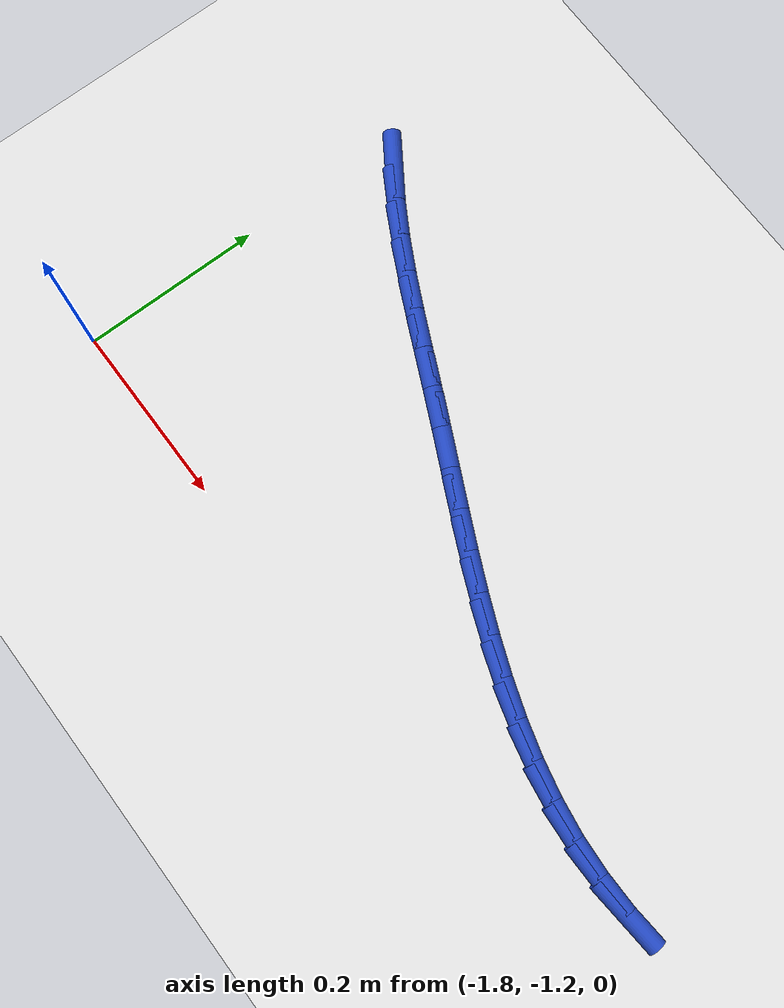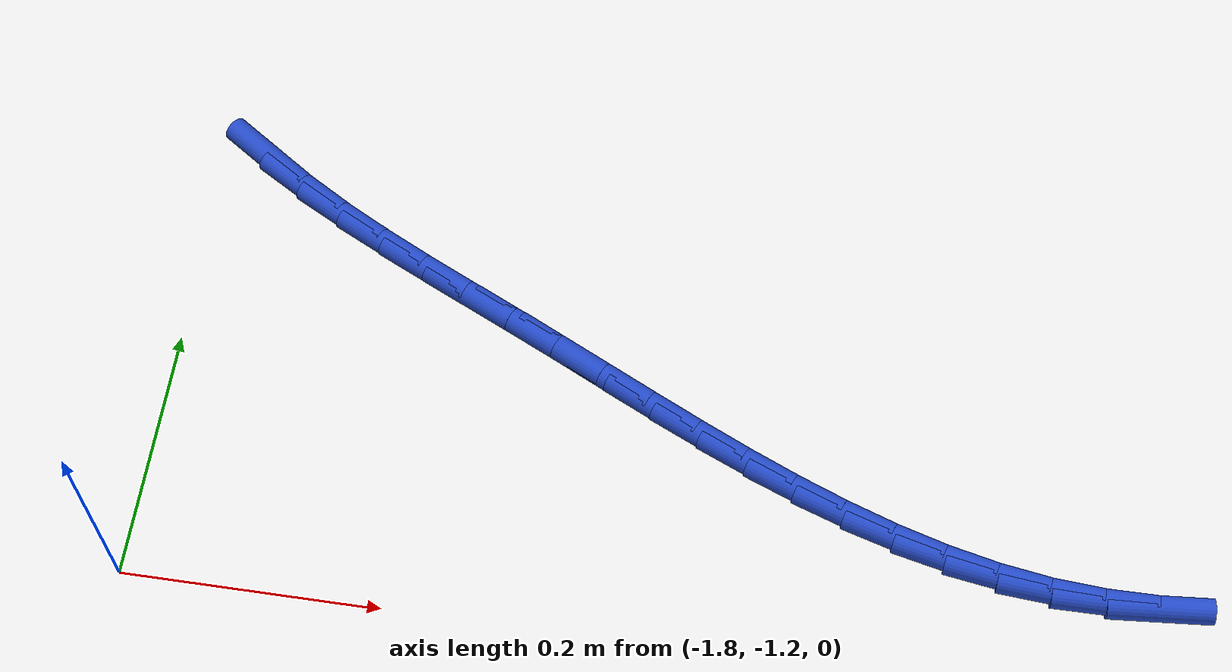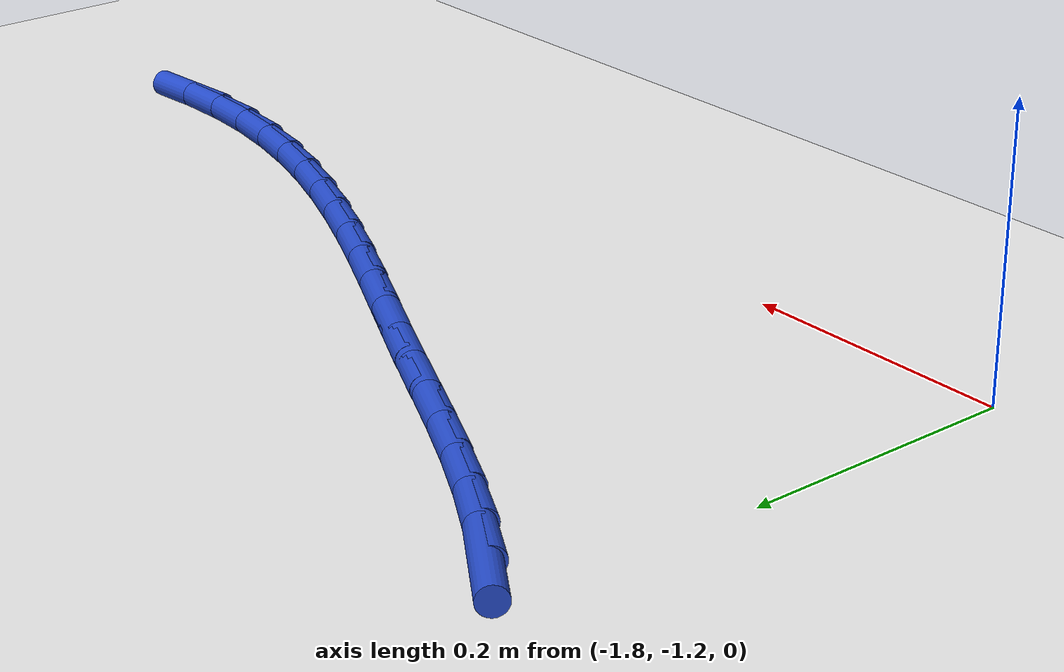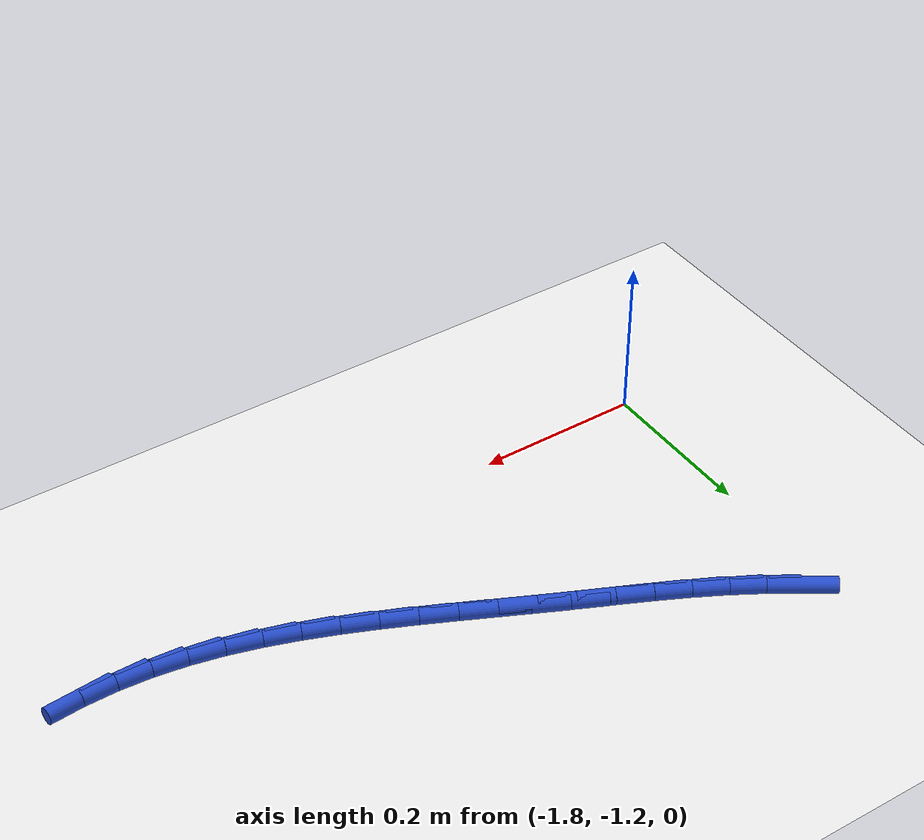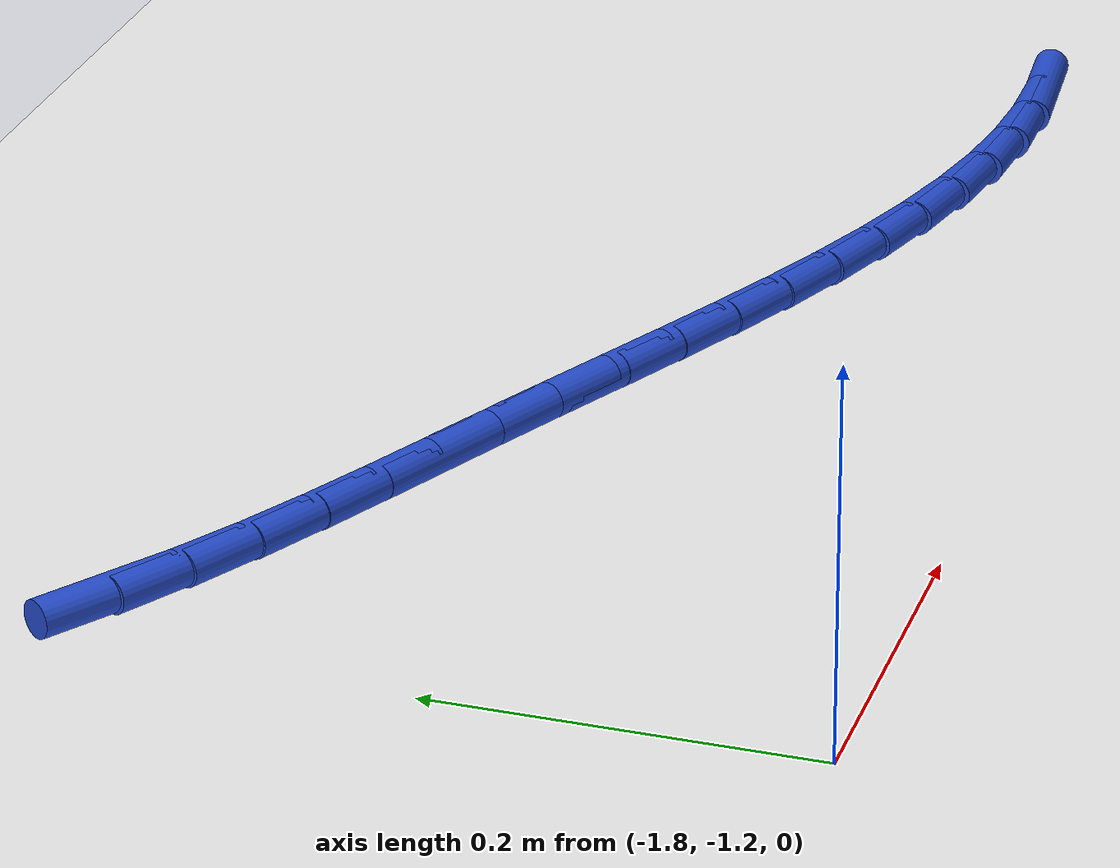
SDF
<sdf version="1.6">
 <world name="default">
  <model name="ground_plane">
   <static>1</static>
   <link name="link">
    <collision name="collision">
     <geometry><plane><normal>0 0 1</normal><size>100 100</size></plane></geometry>
     <surface><friction><ode><mu>100</mu><mu2>50</mu2></ode></friction></surface>
    </collision>
    <visual name="visual">
     <cast_shadows>0</cast_shadows>
     <geometry><plane><normal>0 0 1</normal><size>100 100</size></plane></geometry>
     <material>
      <script><uri>file://media/materials/scripts/gazebo.material</uri><name>Gazebo/WhiteGlow</name></script>
     </material>
    </visual>
   </link>
  </model>
  <model name="line">
   <link name="link_102">
    <pose>-1.7658382612375152 -0.8323486405872367 0.01 0 1.57 -0.5905820316208175</pose>
    <collision name="collision">
     <geometry><cylinder><radius>0.01</radius><length>0.08</length></cylinder></geometry>
    </collision>
    <visual name="visual">
     <material>
      <script><name>Gazebo/Blue</name><uri>file://media/materials/scripts/gazebo.material</uri></script>
     </material>
     <geometry><cylinder><radius>0.01</radius><length>0.08</length></cylinder></geometry>
    </visual>
   </link>
   <link name="link_103">
    <pose>-1.731660715493957 -0.8552612308057724 0.01 0 1.57 -0.5327014649908266</pose>
    <collision name="collision">
     <geometry><cylinder><radius>0.01</radius><length>0.08</length></cylinder></geometry>
    </collision>
    <visual name="visual">
     <material>
      <script><name>Gazebo/Blue</name><uri>file://media/materials/scripts/gazebo.material</uri></script>
     </material>
     <geometry><cylinder><radius>0.01</radius><length>0.08</length></cylinder></geometry>
    </visual>
   </link>
   <link name="link_104">
    <pose>-1.6957116715742222 -0.8764550489286609 0.01 0 1.57 -0.4891192768173354</pose>
    <collision name="collision">
     <geometry><cylinder><radius>0.01</radius><length>0.08</length></cylinder></geometry>
    </collision>
    <visual name="visual">
     <material>
      <script><name>Gazebo/Blue</name><uri>file://media/materials/scripts/gazebo.material</uri></script>
     </material>
     <geometry><cylinder><radius>0.01</radius><length>0.08</length></cylinder></geometry>
    </visual>
   </link>
   <link name="link_105">
    <pose>-1.6583564433226519 -0.8963376450729104 0.01 0 1.57 -0.45907162506293275</pose>
    <collision name="collision">
     <geometry><cylinder><radius>0.01</radius><length>0.08</length></cylinder></geometry>
    </collision>
    <visual name="visual">
     <material>
      <script><name>Gazebo/Blue</name><uri>file://media/materials/scripts/gazebo.material</uri></script>
     </material>
     <geometry><cylinder><radius>0.01</radius><length>0.08</length></cylinder></geometry>
    </visual>
   </link>
   <link name="link_106">
    <pose>-1.6199603445835864 -0.9153165693555303 0.01 0 1.57 -0.44185518840972515</pose>
    <collision name="collision">
     <geometry><cylinder><radius>0.01</radius><length>0.08</length></cylinder></geometry>
    </collision>
    <visual name="visual">
     <material>
      <script><name>Gazebo/Blue</name><uri>file://media/materials/scripts/gazebo.material</uri></script>
     </material>
     <geometry><cylinder><radius>0.01</radius><length>0.08</length></cylinder></geometry>
    </visual>
   </link>
   <link name="link_107">
    <pose>-1.5808886892013672 -0.9337993718935281 0.01 0 1.57 -0.4369609754572899</pose>
    <collision name="collision">
     <geometry><cylinder><radius>0.01</radius><length>0.08</length></cylinder></geometry>
    </collision>
    <visual name="visual">
     <material>
      <script><name>Gazebo/Blue</name><uri>file://media/materials/scripts/gazebo.material</uri></script>
     </material>
     <geometry><cylinder><radius>0.01</radius><length>0.08</length></cylinder></geometry>
    </visual>
   </link>
   <link name="link_108">
    <pose>-1.5415067910203348 -0.9521936028039132 0.01 0 1.57 -0.4435131364320863</pose>
    <collision name="collision">
     <geometry><cylinder><radius>0.01</radius><length>0.08</length></cylinder></geometry>
    </collision>
    <visual name="visual">
     <material>
      <script><name>Gazebo/Blue</name><uri>file://media/materials/scripts/gazebo.material</uri></script>
     </material>
     <geometry><cylinder><radius>0.01</radius><length>0.08</length></cylinder></geometry>
    </visual>
   </link>
   <link name="link_109">
    <pose>-1.5021667648103987 -0.9708832397549564 0.01 0 1.57 -0.4511342479734137</pose>
    <collision name="collision">
     <geometry><cylinder><radius>0.01</radius><length>0.08</length></cylinder></geometry>
    </collision>
    <visual name="visual">
     <material>
      <script><name>Gazebo/Blue</name><uri>file://media/materials/scripts/gazebo.material</uri></script>
     </material>
     <geometry><cylinder><radius>0.01</radius><length>0.08</length></cylinder></geometry>
    </visual>
   </link>
   <link name="link_110">
    <pose>-1.4629998685898769 -0.9898578286324246 0.01 0 1.57 -0.4512773656621891</pose>
    <collision name="collision">
     <geometry><cylinder><radius>0.01</radius><length>0.08</length></cylinder></geometry>
    </collision>
    <visual name="visual">
     <material>
      <script><name>Gazebo/Blue</name><uri>file://media/materials/scripts/gazebo.material</uri></script>
     </material>
     <geometry><cylinder><radius>0.01</radius><length>0.08</length></cylinder></geometry>
    </visual>
   </link>
   <link name="link_111">
    <pose>-1.4239545444973456 -1.0087804213716083 0.01 0 1.57 -0.44361428008104403</pose>
    <collision name="collision">
     <geometry><cylinder><radius>0.01</radius><length>0.08</length></cylinder></geometry>
    </collision>
    <visual name="visual">
     <material>
      <script><name>Gazebo/Blue</name><uri>file://media/materials/scripts/gazebo.material</uri></script>
     </material>
     <geometry><cylinder><radius>0.01</radius><length>0.08</length></cylinder></geometry>
    </visual>
   </link>
   <link name="link_112">
    <pose>-1.3849737290984263 -1.027304237412577 0.01 0 1.57 -0.427968292370245</pose>
    <collision name="collision">
     <geometry><cylinder><radius>0.01</radius><length>0.08</length></cylinder></geometry>
    </collision>
    <visual name="visual">
     <material>
      <script><name>Gazebo/Blue</name><uri>file://media/materials/scripts/gazebo.material</uri></script>
     </material>
     <geometry><cylinder><radius>0.01</radius><length>0.08</length></cylinder></geometry>
    </visual>
   </link>
   <link name="link_113">
    <pose>-1.3460003589587404 -1.0450824961954015 0.01 0 1.57 -0.404064117137864</pose>
    <collision name="collision">
     <geometry><cylinder><radius>0.01</radius><length>0.08</length></cylinder></geometry>
    </collision>
    <visual name="visual">
     <material>
      <script><name>Gazebo/Blue</name><uri>file://media/materials/scripts/gazebo.material</uri></script>
     </material>
     <geometry><cylinder><radius>0.01</radius><length>0.08</length></cylinder></geometry>
    </visual>
   </link>
   <link name="link_114">
    <pose>-1.3069773706439098 -1.0617684171601522 0.01 0 1.57 -0.37155061846517673</pose>
    <collision name="collision">
     <geometry><cylinder><radius>0.01</radius><length>0.08</length></cylinder></geometry>
    </collision>
    <visual name="visual">
     <material>
      <script><name>Gazebo/Blue</name><uri>file://media/materials/scripts/gazebo.material</uri></script>
     </material>
     <geometry><cylinder><radius>0.01</radius><length>0.08</length></cylinder></geometry>
    </visual>
   </link>
   <link name="link_115">
    <pose>-1.2678477007195557 -1.0770152197469003 0.01 0 1.57 -0.3300440025328723</pose>
    <collision name="collision">
     <geometry><cylinder><radius>0.01</radius><length>0.08</length></cylinder></geometry>
    </collision>
    <visual name="visual">
     <material>
      <script><name>Gazebo/Blue</name><uri>file://media/materials/scripts/gazebo.material</uri></script>
     </material>
     <geometry><cylinder><radius>0.01</radius><length>0.08</length></cylinder></geometry>
    </visual>
   </link>
   <link name="link_116">
    <pose>-1.2285542857512988 -1.0904761233957152 0.01 0 1.57 -0.2791989628782828</pose>
    <collision name="collision">
     <geometry><cylinder><radius>0.01</radius><length>0.08</length></cylinder></geometry>
    </collision>
    <visual name="visual">
     <material>
      <script><name>Gazebo/Blue</name><uri>file://media/materials/scripts/gazebo.material</uri></script>
     </material>
     <geometry><cylinder><radius>0.01</radius><length>0.08</length></cylinder></geometry>
    </visual>
   </link>
   <link name="link_117">
    <pose>-1.189040062304762 -1.1018043475466681 0.01 0 1.57 -0.21881445486863169</pose>
    <collision name="collision">
     <geometry><cylinder><radius>0.01</radius><length>0.08</length></cylinder></geometry>
    </collision>
    <visual name="visual">
     <material>
      <script><name>Gazebo/Blue</name><uri>file://media/materials/scripts/gazebo.material</uri></script>
     </material>
     <geometry><cylinder><radius>0.01</radius><length>0.08</length></cylinder></geometry>
    </visual>
   </link>
   <link name="link_118">
    <pose>-1.1492479669455655 -1.1106531116398286 0.01 0 1.57 -0.1489744914773543</pose>
    <collision name="collision">
     <geometry><cylinder><radius>0.01</radius><length>0.08</length></cylinder></geometry>
    </collision>
    <visual name="visual">
     <material>
      <script><name>Gazebo/Blue</name><uri>file://media/materials/scripts/gazebo.material</uri></script>
     </material>
     <geometry><cylinder><radius>0.01</radius><length>0.08</length></cylinder></geometry>
    </visual>
   </link>
   <link name="link_119">
    <pose>-1.1091209362393317 -1.1166756351152678 0.01 0 1.57 -0.07042528657113124</pose>
    <collision name="collision">
     <geometry><cylinder><radius>0.01</radius><length>0.08</length></cylinder></geometry>
    </collision>
    <visual name="visual">
     <material>
      <script><name>Gazebo/Blue</name><uri>file://media/materials/scripts/gazebo.material</uri></script>
     </material>
     <geometry><cylinder><radius>0.01</radius><length>0.08</length></cylinder></geometry>
    </visual>
   </link>
   <link name="link_120">
    <pose>-1.0686047617611198 -1.1195337249861885 0.01 0 1.57 0.009618769273833186</pose>
    <collision name="collision">
     <geometry><cylinder><radius>0.01</radius><length>0.08</length></cylinder></geometry>
    </collision>
    <visual name="visual">
     <material>
      <script><name>Gazebo/Blue</name><uri>file://media/materials/scripts/gazebo.material</uri></script>
     </material>
     <geometry><cylinder><radius>0.01</radius><length>0.08</length></cylinder></geometry>
    </visual>
   </link>
   <link name="link_121">
    <pose>-1.02772879784208 -1.1191405363943001 0.01 0 1.57 0.08362124077673493</pose>
    <collision name="collision">
     <geometry><cylinder><radius>0.01</radius><length>0.08</length></cylinder></geometry>
    </collision>
    <visual name="visual">
     <material>
      <script><name>Gazebo/Blue</name><uri>file://media/materials/scripts/gazebo.material</uri></script>
     </material>
     <geometry><cylinder><radius>0.01</radius><length>0.08</length></cylinder></geometry>
    </visual>
   </link>
  </model>
 </world>
</sdf>
